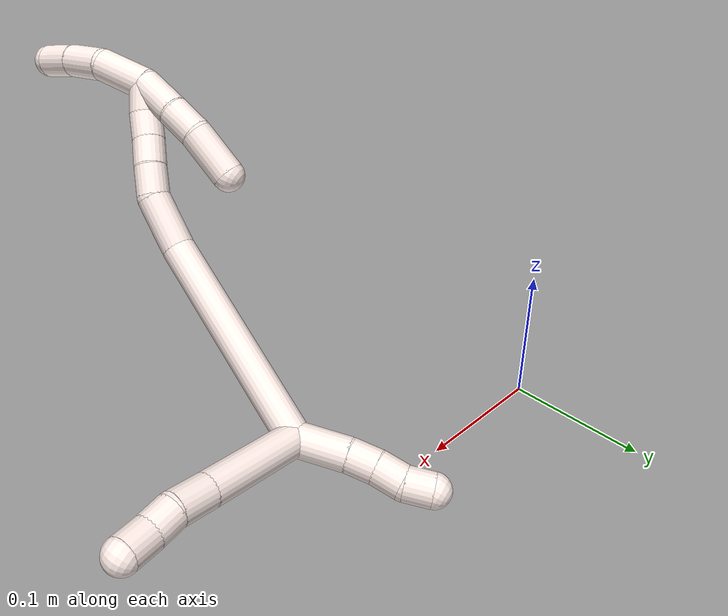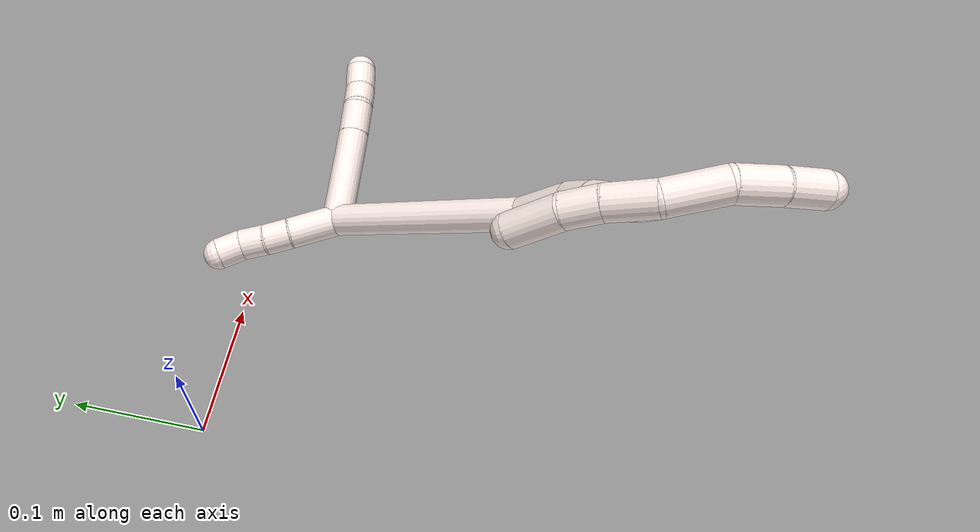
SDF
<sdf version="1.7">
 <world name="default">
  <model name="11">
   <static>0</static>
   <link name="11">
    <collision name="collision-cylinder-e_1_2_8">
     <pose>-0.015513 0.034548 0.012899 -1.21348 -0.398184 0.27827</pose>
     <geometry><cylinder><radius>0.0125</radius><length>0.080015</length></cylinder></geometry>
     <surface>
      <friction><ode><mu>1.16</mu><mu2>1.16</mu2><slip1>0</slip1><slip2>0</slip2></ode></friction>
      <contact><ode><kp>1e+06</kp><kd>1</kd><max_vel>0</max_vel><min_depth>0.001</min_depth></ode></contact>
     </surface>
    </collision>
    <visual name="visual-cylinder-e_1_2_8">
     <pose>-0.015513 0.034548 0.012899 -1.21348 -0.398184 0.27827</pose>
     <geometry><cylinder><radius>0.0125</radius><length>0.080015</length></cylinder></geometry>
     <material><ambient>1 0.933333 0.909804 1</ambient></material>
    </visual>
    <collision name="collision-cylinder-e_2_8_9">
     <pose>-0.03698 0.080885 0.030261 -1.20878 -0.441332 0.307388</pose>
     <geometry><cylinder><radius>0.0125</radius><length>0.027881</length></cylinder></geometry>
     <surface>
      <friction><ode><mu>1.16</mu><mu2>1.16</mu2><slip1>0</slip1><slip2>0</slip2></ode></friction>
      <contact><ode><kp>1e+06</kp><kd>1</kd><max_vel>0</max_vel><min_depth>0.001</min_depth></ode></contact>
     </surface>
    </collision>
    <visual name="visual-cylinder-e_2_8_9">
     <pose>-0.03698 0.080885 0.030261 -1.20878 -0.441332 0.307388</pose>
     <geometry><cylinder><radius>0.0125</radius><length>0.027881</length></cylinder></geometry>
     <material><ambient>1 0.933333 0.909804 1</ambient></material>
    </visual>
    <collision name="collision-cylinder-e_3_9_10">
     <pose>-0.045192 0.102274 0.036462 -1.39181 -0.227319 0.190128</pose>
     <geometry><cylinder><radius>0.0125</radius><length>0.020031</length></cylinder></geometry>
     <surface>
      <friction><ode><mu>1.16</mu><mu2>1.16</mu2><slip1>0</slip1><slip2>0</slip2></ode></friction>
      <contact><ode><kp>1e+06</kp><kd>1</kd><max_vel>0</max_vel><min_depth>0.001</min_depth></ode></contact>
     </surface>
    </collision>
    <visual name="visual-cylinder-e_3_9_10">
     <pose>-0.045192 0.102274 0.036462 -1.39181 -0.227319 0.190128</pose>
     <geometry><cylinder><radius>0.0125</radius><length>0.020031</length></cylinder></geometry>
     <material><ambient>1 0.933333 0.909804 1</ambient></material>
    </visual>
    <collision name="collision-cylinder-e_4_10_6">
     <pose>-0.051885 0.121778 0.040217 -1.36982 -0.413647 0.339475</pose>
     <geometry><cylinder><radius>0.0125</radius><length>0.022073</length></cylinder></geometry>
     <surface>
      <friction><ode><mu>1.16</mu><mu2>1.16</mu2><slip1>0</slip1><slip2>0</slip2></ode></friction>
      <contact><ode><kp>1e+06</kp><kd>1</kd><max_vel>0</max_vel><min_depth>0.001</min_depth></ode></contact>
     </surface>
    </collision>
    <visual name="visual-cylinder-e_4_10_6">
     <pose>-0.051885 0.121778 0.040217 -1.36982 -0.413647 0.339475</pose>
     <geometry><cylinder><radius>0.0125</radius><length>0.022073</length></cylinder></geometry>
     <material><ambient>1 0.933333 0.909804 1</ambient></material>
    </visual>
    <collision name="collision-cylinder-e_1_2_11">
     <pose>-0.004388 -0.004157 -0.0187 2.92286 -0.225199 -1.60017</pose>
     <geometry><cylinder><radius>0.0125</radius><length>0.039305</length></cylinder></geometry>
     <surface>
      <friction><ode><mu>1.16</mu><mu2>1.16</mu2><slip1>0</slip1><slip2>0</slip2></ode></friction>
      <contact><ode><kp>1e+06</kp><kd>1</kd><max_vel>0</max_vel><min_depth>0.001</min_depth></ode></contact>
     </surface>
    </collision>
    <visual name="visual-cylinder-e_1_2_11">
     <pose>-0.004388 -0.004157 -0.0187 2.92286 -0.225199 -1.60017</pose>
     <geometry><cylinder><radius>0.0125</radius><length>0.039305</length></cylinder></geometry>
     <material><ambient>1 0.933333 0.909804 1</ambient></material>
    </visual>
    <collision name="collision-cylinder-e_2_11_12">
     <pose>-0.010608 -0.009438 -0.047292 3.02836 -0.181903 -2.02956</pose>
     <geometry><cylinder><radius>0.0125</radius><length>0.020245</length></cylinder></geometry>
     <surface>
      <friction><ode><mu>1.16</mu><mu2>1.16</mu2><slip1>0</slip1><slip2>0</slip2></ode></friction>
      <contact><ode><kp>1e+06</kp><kd>1</kd><max_vel>0</max_vel><min_depth>0.001</min_depth></ode></contact>
     </surface>
    </collision>
    <visual name="visual-cylinder-e_2_11_12">
     <pose>-0.010608 -0.009438 -0.047292 3.02836 -0.181903 -2.02956</pose>
     <geometry><cylinder><radius>0.0125</radius><length>0.020245</length></cylinder></geometry>
     <material><ambient>1 0.933333 0.909804 1</ambient></material>
    </visual>
    <collision name="collision-cylinder-e_3_12_13">
     <pose>-0.014117 -0.01041 -0.067211 -3.12631 -0.165712 2.95804</pose>
     <geometry><cylinder><radius>0.0125</radius><length>0.020335</length></cylinder></geometry>
     <surface>
      <friction><ode><mu>1.16</mu><mu2>1.16</mu2><slip1>0</slip1><slip2>0</slip2></ode></friction>
      <contact><ode><kp>1e+06</kp><kd>1</kd><max_vel>0</max_vel><min_depth>0.001</min_depth></ode></contact>
     </surface>
    </collision>
    <visual name="visual-cylinder-e_3_12_13">
     <pose>-0.014117 -0.01041 -0.067211 -3.12631 -0.165712 2.95804</pose>
     <geometry><cylinder><radius>0.0125</radius><length>0.020335</length></cylinder></geometry>
     <material><ambient>1 0.933333 0.909804 1</ambient></material>
    </visual>
    <collision name="collision-cylinder-e_4_13_5">
     <pose>-0.017405 -0.013195 -0.086721 2.84111 -0.160878 -0.978632</pose>
     <geometry><cylinder><radius>0.0125</radius><length>0.020114</length></cylinder></geometry>
     <surface>
      <friction><ode><mu>1.16</mu><mu2>1.16</mu2><slip1>0</slip1><slip2>0</slip2></ode></friction>
      <contact><ode><kp>1e+06</kp><kd>1</kd><max_vel>0</max_vel><min_depth>0.001</min_depth></ode></contact>
     </surface>
    </collision>
    <visual name="visual-cylinder-e_4_13_5">
     <pose>-0.017405 -0.013195 -0.086721 2.84111 -0.160878 -0.978632</pose>
     <geometry><cylinder><radius>0.0125</radius><length>0.020114</length></cylinder></geometry>
     <material><ambient>1 0.933333 0.909804 1</ambient></material>
    </visual>
    <collision name="collision-cylinder-e_1_2_14">
     <pose>0.002239 -0.037405 0.074783 0.463787 0.026775 0.006323</pose>
     <geometry><cylinder><radius>0.0125</radius><length>0.167292</length></cylinder></geometry>
     <surface>
      <friction><ode><mu>1.16</mu><mu2>1.16</mu2><slip1>0</slip1><slip2>0</slip2></ode></friction>
      <contact><ode><kp>1e+06</kp><kd>1</kd><max_vel>0</max_vel><min_depth>0.001</min_depth></ode></contact>
     </surface>
    </collision>
    <visual name="visual-cylinder-e_1_2_14">
     <pose>0.002239 -0.037405 0.074783 0.463787 0.026775 0.006323</pose>
     <geometry><cylinder><radius>0.0125</radius><length>0.167292</length></cylinder></geometry>
     <material><ambient>1 0.933333 0.909804 1</ambient></material>
    </visual>
    <collision name="collision-cylinder-e_2_14_15">
     <pose>-0.001315 -0.084284 0.167772 0.479859 -0.275138 -0.067712</pose>
     <geometry><cylinder><radius>0.0125</radius><length>0.042652</length></cylinder></geometry>
     <surface>
      <friction><ode><mu>1.16</mu><mu2>1.16</mu2><slip1>0</slip1><slip2>0</slip2></ode></friction>
      <contact><ode><kp>1e+06</kp><kd>1</kd><max_vel>0</max_vel><min_depth>0.001</min_depth></ode></contact>
     </surface>
    </collision>
    <visual name="visual-cylinder-e_2_14_15">
     <pose>-0.001315 -0.084284 0.167772 0.479859 -0.275138 -0.067712</pose>
     <geometry><cylinder><radius>0.0125</radius><length>0.042652</length></cylinder></geometry>
     <material><ambient>1 0.933333 0.909804 1</ambient></material>
    </visual>
    <collision name="collision-cylinder-e_3_15_16">
     <pose>-0.01011 -0.102318 0.193751 0.833517 -0.253971 -0.112919</pose>
     <geometry><cylinder><radius>0.0125</radius><length>0.023888</length></cylinder></geometry>
     <surface>
      <friction><ode><mu>1.16</mu><mu2>1.16</mu2><slip1>0</slip1><slip2>0</slip2></ode></friction>
      <contact><ode><kp>1e+06</kp><kd>1</kd><max_vel>0</max_vel><min_depth>0.001</min_depth></ode></contact>
     </surface>
    </collision>
    <visual name="visual-cylinder-e_3_15_16">
     <pose>-0.01011 -0.102318 0.193751 0.833517 -0.253971 -0.112919</pose>
     <geometry><cylinder><radius>0.0125</radius><length>0.023888</length></cylinder></geometry>
     <material><ambient>1 0.933333 0.909804 1</ambient></material>
    </visual>
    <collision name="collision-cylinder-e_4_16_17">
     <pose>-0.014874 -0.1191 0.208292 0.882075 -0.164029 -0.077565</pose>
     <geometry><cylinder><radius>0.0125</radius><length>0.021592</length></cylinder></geometry>
     <surface>
      <friction><ode><mu>1.16</mu><mu2>1.16</mu2><slip1>0</slip1><slip2>0</slip2></ode></friction>
      <contact><ode><kp>1e+06</kp><kd>1</kd><max_vel>0</max_vel><min_depth>0.001</min_depth></ode></contact>
     </surface>
    </collision>
    <visual name="visual-cylinder-e_4_16_17">
     <pose>-0.014874 -0.1191 0.208292 0.882075 -0.164029 -0.077565</pose>
     <geometry><cylinder><radius>0.0125</radius><length>0.021592</length></cylinder></geometry>
     <material><ambient>1 0.933333 0.909804 1</ambient></material>
    </visual>
    <collision name="collision-cylinder-e_5_17_18">
     <pose>-0.018941 -0.135118 0.222226 0.827567 -0.214255 -0.094379</pose>
     <geometry><cylinder><radius>0.0125</radius><length>0.02167</length></cylinder></geometry>
     <surface>
      <friction><ode><mu>1.16</mu><mu2>1.16</mu2><slip1>0</slip1><slip2>0</slip2></ode></friction>
      <contact><ode><kp>1e+06</kp><kd>1</kd><max_vel>0</max_vel><min_depth>0.001</min_depth></ode></contact>
     </surface>
    </collision>
    <visual name="visual-cylinder-e_5_17_18">
     <pose>-0.018941 -0.135118 0.222226 0.827567 -0.214255 -0.094379</pose>
     <geometry><cylinder><radius>0.0125</radius><length>0.02167</length></cylinder></geometry>
     <material><ambient>1 0.933333 0.909804 1</ambient></material>
    </visual>
    <collision name="collision-cylinder-e_6_18_1">
     <pose>-0.026072 -0.15128 0.235543 0.936641 -0.435099 -0.222711</pose>
     <geometry><cylinder><radius>0.0125</radius><length>0.022905</length></cylinder></geometry>
     <surface>
      <friction><ode><mu>1.16</mu><mu2>1.16</mu2><slip1>0</slip1><slip2>0</slip2></ode></friction>
      <contact><ode><kp>1e+06</kp><kd>1</kd><max_vel>0</max_vel><min_depth>0.001</min_depth></ode></contact>
     </surface>
    </collision>
    <visual name="visual-cylinder-e_6_18_1">
     <pose>-0.026072 -0.15128 0.235543 0.936641 -0.435099 -0.222711</pose>
     <geometry><cylinder><radius>0.0125</radius><length>0.022905</length></cylinder></geometry>
     <material><ambient>1 0.933333 0.909804 1</ambient></material>
    </visual>
    <collision name="collision-cylinder-e_1_1_19">
     <pose>-0.032883 -0.154782 0.225417 -2.85122 -0.116217 0.757323</pose>
     <geometry><cylinder><radius>0.0125</radius><length>0.034213</length></cylinder></geometry>
     <surface>
      <friction><ode><mu>1.16</mu><mu2>1.16</mu2><slip1>0</slip1><slip2>0</slip2></ode></friction>
      <contact><ode><kp>1e+06</kp><kd>1</kd><max_vel>0</max_vel><min_depth>0.001</min_depth></ode></contact>
     </surface>
    </collision>
    <visual name="visual-cylinder-e_1_1_19">
     <pose>-0.032883 -0.154782 0.225417 -2.85122 -0.116217 0.757323</pose>
     <geometry><cylinder><radius>0.0125</radius><length>0.034213</length></cylinder></geometry>
     <material><ambient>1 0.933333 0.909804 1</ambient></material>
    </visual>
    <collision name="collision-cylinder-e_2_19_20">
     <pose>-0.034862 -0.146759 0.196574 -2.8953 0.000298 -0.002406</pose>
     <geometry><cylinder><radius>0.0125</radius><length>0.025907</length></cylinder></geometry>
     <surface>
      <friction><ode><mu>1.16</mu><mu2>1.16</mu2><slip1>0</slip1><slip2>0</slip2></ode></friction>
      <contact><ode><kp>1e+06</kp><kd>1</kd><max_vel>0</max_vel><min_depth>0.001</min_depth></ode></contact>
     </surface>
    </collision>
    <visual name="visual-cylinder-e_2_19_20">
     <pose>-0.034862 -0.146759 0.196574 -2.8953 0.000298 -0.002406</pose>
     <geometry><cylinder><radius>0.0125</radius><length>0.025907</length></cylinder></geometry>
     <material><ambient>1 0.933333 0.909804 1</ambient></material>
    </visual>
    <collision name="collision-cylinder-e_3_20_4">
     <pose>-0.030835 -0.137993 0.165304 -2.85036 0.20316 -1.21477</pose>
     <geometry><cylinder><radius>0.0125</radius><length>0.03988</length></cylinder></geometry>
     <surface>
      <friction><ode><mu>1.16</mu><mu2>1.16</mu2><slip1>0</slip1><slip2>0</slip2></ode></friction>
      <contact><ode><kp>1e+06</kp><kd>1</kd><max_vel>0</max_vel><min_depth>0.001</min_depth></ode></contact>
     </surface>
    </collision>
    <visual name="visual-cylinder-e_3_20_4">
     <pose>-0.030835 -0.137993 0.165304 -2.85036 0.20316 -1.21477</pose>
     <geometry><cylinder><radius>0.0125</radius><length>0.03988</length></cylinder></geometry>
     <material><ambient>1 0.933333 0.909804 1</ambient></material>
    </visual>
    <collision name="collision-cylinder-e_1_1_21">
     <pose>-0.027266 -0.15945 0.261942 -0.009703 0.177549 -0.000864</pose>
     <geometry><cylinder><radius>0.0125</radius><length>0.041139</length></cylinder></geometry>
     <surface>
      <friction><ode><mu>1.16</mu><mu2>1.16</mu2><slip1>0</slip1><slip2>0</slip2></ode></friction>
      <contact><ode><kp>1e+06</kp><kd>1</kd><max_vel>0</max_vel><min_depth>0.001</min_depth></ode></contact>
     </surface>
    </collision>
    <visual name="visual-cylinder-e_1_1_21">
     <pose>-0.027266 -0.15945 0.261942 -0.009703 0.177549 -0.000864</pose>
     <geometry><cylinder><radius>0.0125</radius><length>0.041139</length></cylinder></geometry>
     <material><ambient>1 0.933333 0.909804 1</ambient></material>
    </visual>
    <collision name="collision-cylinder-e_2_21_22">
     <pose>-0.016029 -0.158533 0.296051 -0.051897 0.50111 -0.013285</pose>
     <geometry><cylinder><radius>0.0125</radius><length>0.031658</length></cylinder></geometry>
     <surface>
      <friction><ode><mu>1.16</mu><mu2>1.16</mu2><slip1>0</slip1><slip2>0</slip2></ode></friction>
      <contact><ode><kp>1e+06</kp><kd>1</kd><max_vel>0</max_vel><min_depth>0.001</min_depth></ode></contact>
     </surface>
    </collision>
    <visual name="visual-cylinder-e_2_21_22">
     <pose>-0.016029 -0.158533 0.296051 -0.051897 0.50111 -0.013285</pose>
     <geometry><cylinder><radius>0.0125</radius><length>0.031658</length></cylinder></geometry>
     <material><ambient>1 0.933333 0.909804 1</ambient></material>
    </visual>
    <collision name="collision-cylinder-e_3_22_3">
     <pose>-0.00094 -0.156368 0.32118 -0.127578 0.582692 -0.038305</pose>
     <geometry><cylinder><radius>0.0125</radius><length>0.027203</length></cylinder></geometry>
     <surface>
      <friction><ode><mu>1.16</mu><mu2>1.16</mu2><slip1>0</slip1><slip2>0</slip2></ode></friction>
      <contact><ode><kp>1e+06</kp><kd>1</kd><max_vel>0</max_vel><min_depth>0.001</min_depth></ode></contact>
     </surface>
    </collision>
    <visual name="visual-cylinder-e_3_22_3">
     <pose>-0.00094 -0.156368 0.32118 -0.127578 0.582692 -0.038305</pose>
     <geometry><cylinder><radius>0.0125</radius><length>0.027203</length></cylinder></geometry>
     <material><ambient>1 0.933333 0.909804 1</ambient></material>
    </visual>
    <collision name="collision-sphere-3">
     <pose>0.006544 -0.154923 0.332445 0 -0 0</pose>
     <geometry><sphere><radius>0.0125</radius></sphere></geometry>
     <surface>
      <friction><ode><mu>1.16</mu><mu2>1.16</mu2><slip1>0</slip1><slip2>0</slip2></ode></friction>
      <contact><ode><kp>1e+06</kp><kd>1</kd><max_vel>0</max_vel><min_depth>0.001</min_depth></ode></contact>
     </surface>
    </collision>
    <visual name="visual-sphere-3">
     <pose>0.006544 -0.154923 0.332445 0 -0 0</pose>
     <geometry><sphere><radius>0.0125</radius></sphere></geometry>
     <material><ambient>1 0.933333 0.909804 1</ambient></material>
    </visual>
    <collision name="collision-sphere-22">
     <pose>-0.008424 -0.157813 0.309916 0 -0 0</pose>
     <geometry><sphere><radius>0.0125</radius></sphere></geometry>
     <surface>
      <friction><ode><mu>1.16</mu><mu2>1.16</mu2><slip1>0</slip1><slip2>0</slip2></ode></friction>
      <contact><ode><kp>1e+06</kp><kd>1</kd><max_vel>0</max_vel><min_depth>0.001</min_depth></ode></contact>
     </surface>
    </collision>
    <visual name="visual-sphere-22">
     <pose>-0.008424 -0.157813 0.309916 0 -0 0</pose>
     <geometry><sphere><radius>0.0125</radius></sphere></geometry>
     <material><ambient>1 0.933333 0.909804 1</ambient></material>
    </visual>
    <collision name="collision-sphere-21">
     <pose>-0.023633 -0.159253 0.282187 0 -0 0</pose>
     <geometry><sphere><radius>0.0125</radius></sphere></geometry>
     <surface>
      <friction><ode><mu>1.16</mu><mu2>1.16</mu2><slip1>0</slip1><slip2>0</slip2></ode></friction>
      <contact><ode><kp>1e+06</kp><kd>1</kd><max_vel>0</max_vel><min_depth>0.001</min_depth></ode></contact>
     </surface>
    </collision>
    <visual name="visual-sphere-21">
     <pose>-0.023633 -0.159253 0.282187 0 -0 0</pose>
     <geometry><sphere><radius>0.0125</radius></sphere></geometry>
     <material><ambient>1 0.933333 0.909804 1</ambient></material>
    </visual>
    <collision name="collision-sphere-4">
     <pose>-0.026812 -0.132385 0.146597 0 -0 0</pose>
     <geometry><sphere><radius>0.0125</radius></sphere></geometry>
     <surface>
      <friction><ode><mu>1.16</mu><mu2>1.16</mu2><slip1>0</slip1><slip2>0</slip2></ode></friction>
      <contact><ode><kp>1e+06</kp><kd>1</kd><max_vel>0</max_vel><min_depth>0.001</min_depth></ode></contact>
     </surface>
    </collision>
    <visual name="visual-sphere-4">
     <pose>-0.026812 -0.132385 0.146597 0 -0 0</pose>
     <geometry><sphere><radius>0.0125</radius></sphere></geometry>
     <material><ambient>1 0.933333 0.909804 1</ambient></material>
    </visual>
    <collision name="collision-sphere-20">
     <pose>-0.034858 -0.143601 0.184012 0 -0 0</pose>
     <geometry><sphere><radius>0.0125</radius></sphere></geometry>
     <surface>
      <friction><ode><mu>1.16</mu><mu2>1.16</mu2><slip1>0</slip1><slip2>0</slip2></ode></friction>
      <contact><ode><kp>1e+06</kp><kd>1</kd><max_vel>0</max_vel><min_depth>0.001</min_depth></ode></contact>
     </surface>
    </collision>
    <visual name="visual-sphere-20">
     <pose>-0.034858 -0.143601 0.184012 0 -0 0</pose>
     <geometry><sphere><radius>0.0125</radius></sphere></geometry>
     <material><ambient>1 0.933333 0.909804 1</ambient></material>
    </visual>
    <collision name="collision-sphere-11">
     <pose>-0.008777 -0.008314 -0.0374 0 -0 0</pose>
     <geometry><sphere><radius>0.0125</radius></sphere></geometry>
     <surface>
      <friction><ode><mu>1.16</mu><mu2>1.16</mu2><slip1>0</slip1><slip2>0</slip2></ode></friction>
      <contact><ode><kp>1e+06</kp><kd>1</kd><max_vel>0</max_vel><min_depth>0.001</min_depth></ode></contact>
     </surface>
    </collision>
    <visual name="visual-sphere-11">
     <pose>-0.008777 -0.008314 -0.0374 0 -0 0</pose>
     <geometry><sphere><radius>0.0125</radius></sphere></geometry>
     <material><ambient>1 0.933333 0.909804 1</ambient></material>
    </visual>
    <collision name="collision-sphere-6">
     <pose>-0.056321 0.131681 0.042234 0 -0 0</pose>
     <geometry><sphere><radius>0.0125</radius></sphere></geometry>
     <surface>
      <friction><ode><mu>1.16</mu><mu2>1.16</mu2><slip1>0</slip1><slip2>0</slip2></ode></friction>
      <contact><ode><kp>1e+06</kp><kd>1</kd><max_vel>0</max_vel><min_depth>0.001</min_depth></ode></contact>
     </surface>
    </collision>
    <visual name="visual-sphere-6">
     <pose>-0.056321 0.131681 0.042234 0 -0 0</pose>
     <geometry><sphere><radius>0.0125</radius></sphere></geometry>
     <material><ambient>1 0.933333 0.909804 1</ambient></material>
    </visual>
    <collision name="collision-sphere-10">
     <pose>-0.047449 0.111876 0.0382 0 -0 0</pose>
     <geometry><sphere><radius>0.0125</radius></sphere></geometry>
     <surface>
      <friction><ode><mu>1.16</mu><mu2>1.16</mu2><slip1>0</slip1><slip2>0</slip2></ode></friction>
      <contact><ode><kp>1e+06</kp><kd>1</kd><max_vel>0</max_vel><min_depth>0.001</min_depth></ode></contact>
     </surface>
    </collision>
    <visual name="visual-sphere-10">
     <pose>-0.047449 0.111876 0.0382 0 -0 0</pose>
     <geometry><sphere><radius>0.0125</radius></sphere></geometry>
     <material><ambient>1 0.933333 0.909804 1</ambient></material>
    </visual>
    <collision name="collision-sphere-9">
     <pose>-0.042935 0.092672 0.034725 0 -0 0</pose>
     <geometry><sphere><radius>0.0125</radius></sphere></geometry>
     <surface>
      <friction><ode><mu>1.16</mu><mu2>1.16</mu2><slip1>0</slip1><slip2>0</slip2></ode></friction>
      <contact><ode><kp>1e+06</kp><kd>1</kd><max_vel>0</max_vel><min_depth>0.001</min_depth></ode></contact>
     </surface>
    </collision>
    <visual name="visual-sphere-9">
     <pose>-0.042935 0.092672 0.034725 0 -0 0</pose>
     <geometry><sphere><radius>0.0125</radius></sphere></geometry>
     <material><ambient>1 0.933333 0.909804 1</ambient></material>
    </visual>
    <collision name="collision-sphere-2">
     <geometry><sphere><radius>0.0125</radius></sphere></geometry>
     <surface>
      <friction><ode><mu>1.16</mu><mu2>1.16</mu2><slip1>0</slip1><slip2>0</slip2></ode></friction>
      <contact><ode><kp>1e+06</kp><kd>1</kd><max_vel>0</max_vel><min_depth>0.001</min_depth></ode></contact>
     </surface>
    </collision>
    <visual name="visual-sphere-2">
     <geometry><sphere><radius>0.0125</radius></sphere></geometry>
     <material><ambient>1 0.933333 0.909804 1</ambient></material>
    </visual>
    <collision name="collision-sphere-19">
     <pose>-0.034866 -0.149917 0.209137 0 -0 0</pose>
     <geometry><sphere><radius>0.0125</radius></sphere></geometry>
     <surface>
      <friction><ode><mu>1.16</mu><mu2>1.16</mu2><slip1>0</slip1><slip2>0</slip2></ode></friction>
      <contact><ode><kp>1e+06</kp><kd>1</kd><max_vel>0</max_vel><min_depth>0.001</min_depth></ode></contact>
     </surface>
    </collision>
    <visual name="visual-sphere-19">
     <pose>-0.034866 -0.149917 0.209137 0 -0 0</pose>
     <geometry><sphere><radius>0.0125</radius></sphere></geometry>
     <material><ambient>1 0.933333 0.909804 1</ambient></material>
    </visual>
    <collision name="collision-sphere-8">
     <pose>-0.031026 0.069097 0.025797 0 -0 0</pose>
     <geometry><sphere><radius>0.0125</radius></sphere></geometry>
     <surface>
      <friction><ode><mu>1.16</mu><mu2>1.16</mu2><slip1>0</slip1><slip2>0</slip2></ode></friction>
      <contact><ode><kp>1e+06</kp><kd>1</kd><max_vel>0</max_vel><min_depth>0.001</min_depth></ode></contact>
     </surface>
    </collision>
    <visual name="visual-sphere-8">
     <pose>-0.031026 0.069097 0.025797 0 -0 0</pose>
     <geometry><sphere><radius>0.0125</radius></sphere></geometry>
     <material><ambient>1 0.933333 0.909804 1</ambient></material>
    </visual>
    <collision name="collision-sphere-12">
     <pose>-0.012439 -0.010563 -0.057184 0 -0 0</pose>
     <geometry><sphere><radius>0.0125</radius></sphere></geometry>
     <surface>
      <friction><ode><mu>1.16</mu><mu2>1.16</mu2><slip1>0</slip1><slip2>0</slip2></ode></friction>
      <contact><ode><kp>1e+06</kp><kd>1</kd><max_vel>0</max_vel><min_depth>0.001</min_depth></ode></contact>
     </surface>
    </collision>
    <visual name="visual-sphere-12">
     <pose>-0.012439 -0.010563 -0.057184 0 -0 0</pose>
     <geometry><sphere><radius>0.0125</radius></sphere></geometry>
     <material><ambient>1 0.933333 0.909804 1</ambient></material>
    </visual>
    <collision name="collision-sphere-13">
     <pose>-0.015794 -0.010257 -0.077238 0 -0 0</pose>
     <geometry><sphere><radius>0.0125</radius></sphere></geometry>
     <surface>
      <friction><ode><mu>1.16</mu><mu2>1.16</mu2><slip1>0</slip1><slip2>0</slip2></ode></friction>
      <contact><ode><kp>1e+06</kp><kd>1</kd><max_vel>0</max_vel><min_depth>0.001</min_depth></ode></contact>
     </surface>
    </collision>
    <visual name="visual-sphere-13">
     <pose>-0.015794 -0.010257 -0.077238 0 -0 0</pose>
     <geometry><sphere><radius>0.0125</radius></sphere></geometry>
     <material><ambient>1 0.933333 0.909804 1</ambient></material>
    </visual>
    <collision name="collision-sphere-5">
     <pose>-0.019016 -0.016133 -0.096203 0 -0 0</pose>
     <geometry><sphere><radius>0.0125</radius></sphere></geometry>
     <surface>
      <friction><ode><mu>1.16</mu><mu2>1.16</mu2><slip1>0</slip1><slip2>0</slip2></ode></friction>
      <contact><ode><kp>1e+06</kp><kd>1</kd><max_vel>0</max_vel><min_depth>0.001</min_depth></ode></contact>
     </surface>
    </collision>
    <visual name="visual-sphere-5">
     <pose>-0.019016 -0.016133 -0.096203 0 -0 0</pose>
     <geometry><sphere><radius>0.0125</radius></sphere></geometry>
     <material><ambient>1 0.933333 0.909804 1</ambient></material>
    </visual>
    <collision name="collision-sphere-14">
     <pose>0.004479 -0.074809 0.149566 0 -0 0</pose>
     <geometry><sphere><radius>0.0125</radius></sphere></geometry>
     <surface>
      <friction><ode><mu>1.16</mu><mu2>1.16</mu2><slip1>0</slip1><slip2>0</slip2></ode></friction>
      <contact><ode><kp>1e+06</kp><kd>1</kd><max_vel>0</max_vel><min_depth>0.001</min_depth></ode></contact>
     </surface>
    </collision>
    <visual name="visual-sphere-14">
     <pose>0.004479 -0.074809 0.149566 0 -0 0</pose>
     <geometry><sphere><radius>0.0125</radius></sphere></geometry>
     <material><ambient>1 0.933333 0.909804 1</ambient></material>
    </visual>
    <collision name="collision-sphere-15">
     <pose>-0.007109 -0.093759 0.185978 0 -0 0</pose>
     <geometry><sphere><radius>0.0125</radius></sphere></geometry>
     <surface>
      <friction><ode><mu>1.16</mu><mu2>1.16</mu2><slip1>0</slip1><slip2>0</slip2></ode></friction>
      <contact><ode><kp>1e+06</kp><kd>1</kd><max_vel>0</max_vel><min_depth>0.001</min_depth></ode></contact>
     </surface>
    </collision>
    <visual name="visual-sphere-15">
     <pose>-0.007109 -0.093759 0.185978 0 -0 0</pose>
     <geometry><sphere><radius>0.0125</radius></sphere></geometry>
     <material><ambient>1 0.933333 0.909804 1</ambient></material>
    </visual>
    <collision name="collision-sphere-16">
     <pose>-0.013111 -0.110876 0.201523 0 -0 0</pose>
     <geometry><sphere><radius>0.0125</radius></sphere></geometry>
     <surface>
      <friction><ode><mu>1.16</mu><mu2>1.16</mu2><slip1>0</slip1><slip2>0</slip2></ode></friction>
      <contact><ode><kp>1e+06</kp><kd>1</kd><max_vel>0</max_vel><min_depth>0.001</min_depth></ode></contact>
     </surface>
    </collision>
    <visual name="visual-sphere-16">
     <pose>-0.013111 -0.110876 0.201523 0 -0 0</pose>
     <geometry><sphere><radius>0.0125</radius></sphere></geometry>
     <material><ambient>1 0.933333 0.909804 1</ambient></material>
    </visual>
    <collision name="collision-sphere-17">
     <pose>-0.016637 -0.127323 0.215062 0 -0 0</pose>
     <geometry><sphere><radius>0.0125</radius></sphere></geometry>
     <surface>
      <friction><ode><mu>1.16</mu><mu2>1.16</mu2><slip1>0</slip1><slip2>0</slip2></ode></friction>
      <contact><ode><kp>1e+06</kp><kd>1</kd><max_vel>0</max_vel><min_depth>0.001</min_depth></ode></contact>
     </surface>
    </collision>
    <visual name="visual-sphere-17">
     <pose>-0.016637 -0.127323 0.215062 0 -0 0</pose>
     <geometry><sphere><radius>0.0125</radius></sphere></geometry>
     <material><ambient>1 0.933333 0.909804 1</ambient></material>
    </visual>
    <collision name="collision-sphere-18">
     <pose>-0.021244 -0.142914 0.22939 0 -0 0</pose>
     <geometry><sphere><radius>0.0125</radius></sphere></geometry>
     <surface>
      <friction><ode><mu>1.16</mu><mu2>1.16</mu2><slip1>0</slip1><slip2>0</slip2></ode></friction>
      <contact><ode><kp>1e+06</kp><kd>1</kd><max_vel>0</max_vel><min_depth>0.001</min_depth></ode></contact>
     </surface>
    </collision>
    <visual name="visual-sphere-18">
     <pose>-0.021244 -0.142914 0.22939 0 -0 0</pose>
     <geometry><sphere><radius>0.0125</radius></sphere></geometry>
     <material><ambient>1 0.933333 0.909804 1</ambient></material>
    </visual>
    <collision name="collision-sphere-1">
     <pose>-0.030899 -0.159646 0.241697 0 -0 0</pose>
     <geometry><sphere><radius>0.0125</radius></sphere></geometry>
     <surface>
      <friction><ode><mu>1.16</mu><mu2>1.16</mu2><slip1>0</slip1><slip2>0</slip2></ode></friction>
      <contact><ode><kp>1e+06</kp><kd>1</kd><max_vel>0</max_vel><min_depth>0.001</min_depth></ode></contact>
     </surface>
    </collision>
    <visual name="visual-sphere-1">
     <pose>-0.030899 -0.159646 0.241697 0 -0 0</pose>
     <geometry><sphere><radius>0.0125</radius></sphere></geometry>
     <material><ambient>1 0.933333 0.909804 1</ambient></material>
    </visual>
    <inertial>
     <pose>-0.015349 -0.057026 0.114635 0 -0 0</pose>
     <mass>0.75</mass>
     <inertia>
      <ixx>0.000474</ixx>
      <ixy>0</ixy>
      <ixz>0</ixz>
      <iyy>0.000399</iyy>
      <iyz>0</iyz>
      <izz>0.000164</izz>
     </inertia>
    </inertial>
   </link>
   <pose>0.183501 -0.05778 0.027013 -0.778535 0.998276 -2.06336</pose>
  </model>
 </world>
</sdf>
